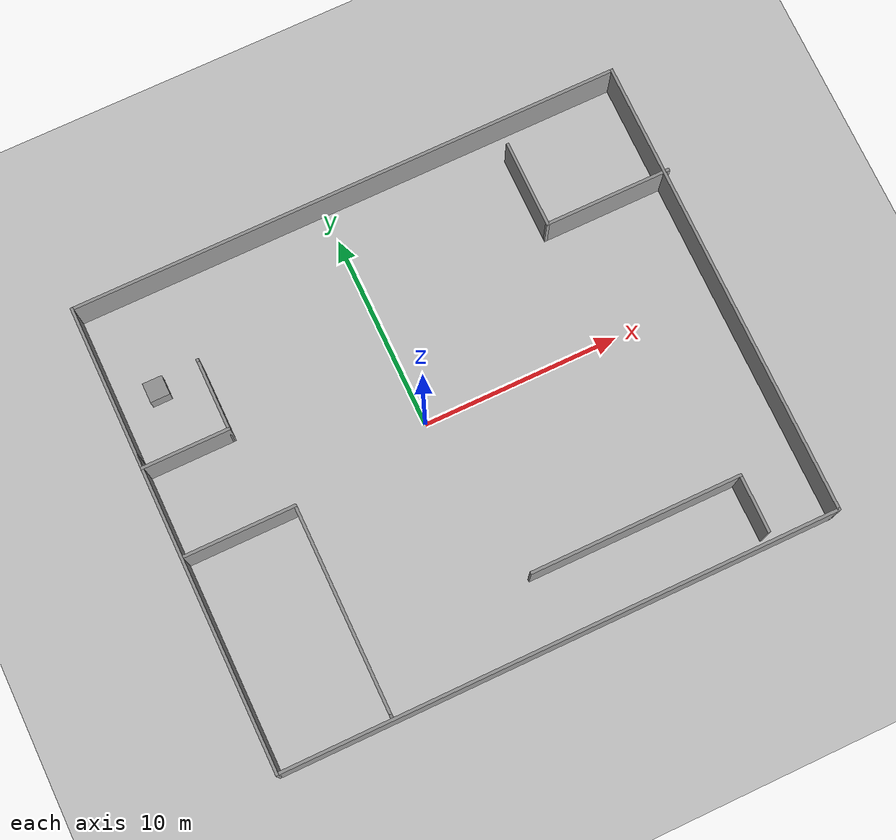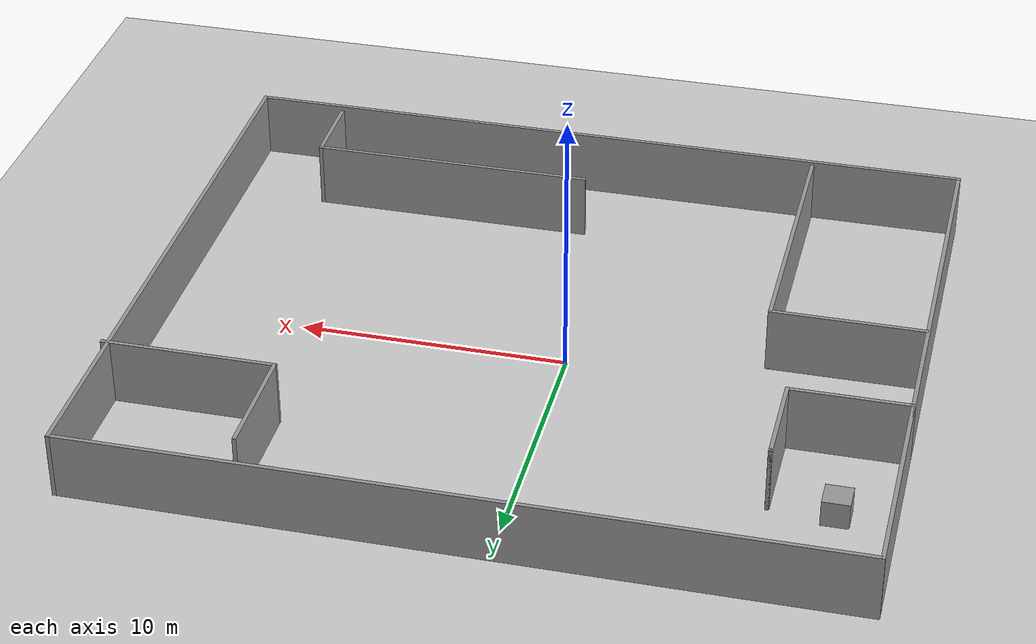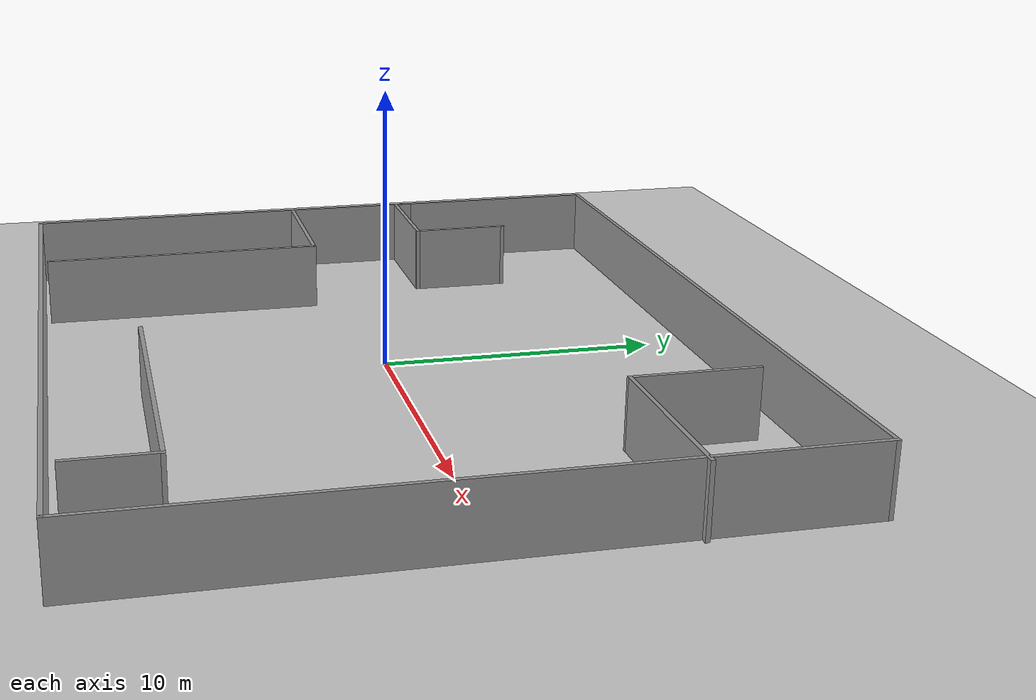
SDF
<sdf version="1.6">
 <world name="default">
  <light name="sun" type="directional">
   <pose>0 0 10 0 -0 0</pose>
   <diffuse>0.8 0.8 0.8 1</diffuse>
   <specular>0.2 0.2 0.2 1</specular>
   <attenuation>
    <range>1000</range>
    <constant>0.9</constant>
    <linear>0.01</linear>
    <quadratic>0.001</quadratic>
   </attenuation>
   <direction>-0.5 0.1 -0.9</direction>
  </light>
  <model name="ground_plane">
   <static>1</static>
   <link name="link">
    <collision name="collision">
     <geometry><plane><normal>0 0 1</normal><size>100 100</size></plane></geometry>
     <surface>
      <contact><collide_bitmask>65535</collide_bitmask></contact>
      <friction><ode><mu>100</mu><mu2>50</mu2></ode></friction>
     </surface>
    </collision>
    <visual name="visual">
     <cast_shadows>0</cast_shadows>
     <geometry><plane><normal>0 0 1</normal><size>100 100</size></plane></geometry>
     <material>
      <script><uri>file://media/materials/scripts/gazebo.material</uri><name>Gazebo/Grey</name></script>
     </material>
    </visual>
   </link>
  </model>
  <gravity>0 0 -9.8</gravity>
  <magnetic_field>6e-06 2.3e-05 -4.2e-05</magnetic_field>
  <atmosphere type="adiabatic"/>
  <physics name="default_physics" default="0" type="ode">
   <max_step_size>0.001</max_step_size>
   <real_time_factor>1</real_time_factor>
   <real_time_update_rate>1000</real_time_update_rate>
  </physics>
  <scene><ambient>0.4 0.4 0.4 1</ambient><background>0.7 0.7 0.7 1</background><shadows>1</shadows></scene>
  <audio><device>default</device></audio>
  <spherical_coordinates>
   <surface_model>EARTH_WGS84</surface_model>
   <latitude_deg>0</latitude_deg>
   <longitude_deg>0</longitude_deg>
   <elevation>0</elevation>
   <heading_deg>0</heading_deg>
  </spherical_coordinates>
  <model name="trytobe">
   <pose>1.29991 -0.28275 0 0 -0 0</pose>
   <link name="Wall_10">
    <collision name="Wall_10_Collision">
     <geometry><box><size>4.5 0.15 2.5</size></box></geometry>
     <pose>0 0 1.25 0 -0 0</pose>
    </collision>
    <visual name="Wall_10_Visual">
     <pose>0 0 1.25 0 -0 0</pose>
     <geometry><box><size>4.5 0.15 2.5</size></box></geometry>
     <material>
      <script><uri>file://media/materials/scripts/gazebo.material</uri><name>Gazebo/Grey</name></script>
      <ambient>1 1 1 1</ambient>
     </material>
     <meta><layer>0</layer></meta>
    </visual>
    <pose>-11.9764 3.45 0 0 -0 0</pose>
   </link>
   <link name="Wall_11">
    <collision name="Wall_11_Collision">
     <geometry><box><size>3.75 0.15 2.5</size></box></geometry>
     <pose>0 0 1.25 0 -0 0</pose>
    </collision>
    <visual name="Wall_11_Visual">
     <pose>0 0 1.25 0 -0 0</pose>
     <geometry><box><size>3.75 0.15 2.5</size></box></geometry>
     <material>
      <script><uri>file://media/materials/scripts/gazebo.material</uri><name>Gazebo/Grey</name></script>
      <ambient>1 1 1 1</ambient>
     </material>
     <meta><layer>0</layer></meta>
    </visual>
    <pose>-9.80141 5.25 0 0 -0 1.5708</pose>
   </link>
   <link name="Wall_12">
    <collision name="Wall_12_Collision">
     <geometry><box><size>0.15 0.15 2.5</size></box></geometry>
     <pose>0 0 1.25 0 -0 0</pose>
    </collision>
    <visual name="Wall_12_Visual">
     <pose>0 0 1.25 0 -0 0</pose>
     <geometry><box><size>0.15 0.15 2.5</size></box></geometry>
     <material>
      <script><uri>file://media/materials/scripts/gazebo.material</uri><name>Gazebo/Grey</name></script>
      <ambient>1 1 1 1</ambient>
     </material>
     <meta><layer>0</layer></meta>
    </visual>
    <pose>-9.80141 7.05 0 0 -0 0</pose>
   </link>
   <link name="Wall_14">
    <collision name="Wall_14_Collision">
     <geometry><box><size>5.75 0.15 2.5</size></box></geometry>
     <pose>0 0 1.25 0 -0 0</pose>
    </collision>
    <visual name="Wall_14_Visual">
     <pose>0 0 1.25 0 -0 0</pose>
     <geometry><box><size>5.75 0.15 2.5</size></box></geometry>
     <material>
      <script><uri>file://media/materials/scripts/gazebo.material</uri><name>Gazebo/Grey</name></script>
      <ambient>1 1 1 1</ambient>
     </material>
     <meta><layer>0</layer></meta>
    </visual>
    <pose>-11.2899 -1.11834 0 0 -0 0</pose>
   </link>
   <link name="Wall_15">
    <collision name="Wall_15_Collision">
     <geometry><box><size>10.5 0.15 2.5</size></box></geometry>
     <pose>0 0 1.25 0 -0 0</pose>
    </collision>
    <visual name="Wall_15_Visual">
     <pose>0 0 1.25 0 -0 0</pose>
     <geometry><box><size>10.5 0.15 2.5</size></box></geometry>
     <material>
      <script><uri>file://media/materials/scripts/gazebo.material</uri><name>Gazebo/Grey</name></script>
      <ambient>1 1 1 1</ambient>
     </material>
     <meta><layer>0</layer></meta>
    </visual>
    <pose>-8.48988 -6.29334 0 0 -0 -1.5708</pose>
   </link>
   <link name="Wall_17">
    <collision name="Wall_17_Collision">
     <geometry><box><size>3 0.15 2.5</size></box></geometry>
     <pose>0 0 1.25 0 -0 0</pose>
    </collision>
    <visual name="Wall_17_Visual">
     <pose>0 0 1.25 0 -0 0</pose>
     <geometry><box><size>3 0.15 2.5</size></box></geometry>
     <material>
      <script><uri>file://media/materials/scripts/gazebo.material</uri><name>Gazebo/Grey</name></script>
      <ambient>1 1 1 1</ambient>
     </material>
     <meta><layer>0</layer></meta>
    </visual>
    <pose>10.5828 -9.90697 0 0 -0 1.5708</pose>
   </link>
   <link name="Wall_18">
    <collision name="Wall_18_Collision">
     <geometry><box><size>10.75 0.15 2.5</size></box></geometry>
     <pose>0 0 1.25 0 -0 0</pose>
    </collision>
    <visual name="Wall_18_Visual">
     <pose>0 0 1.25 0 -0 0</pose>
     <geometry><box><size>10.75 0.15 2.5</size></box></geometry>
     <material>
      <script><uri>file://media/materials/scripts/gazebo.material</uri><name>Gazebo/Grey</name></script>
      <ambient>1 1 1 1</ambient>
     </material>
     <meta><layer>0</layer></meta>
    </visual>
    <pose>5.2828 -8.48197 0 0 -0 3.14159</pose>
   </link>
   <link name="Wall_20">
    <collision name="Wall_20_Collision">
     <geometry><box><size>6.5 0.15 2.5</size></box></geometry>
     <pose>0 0 1.25 0 -0 0</pose>
    </collision>
    <visual name="Wall_20_Visual">
     <pose>0 0 1.25 0 -0 0</pose>
     <geometry><box><size>6.5 0.15 2.5</size></box></geometry>
     <material>
      <script><uri>file://media/materials/scripts/gazebo.material</uri><name>Gazebo/Grey</name></script>
      <ambient>1 1 1 1</ambient>
     </material>
     <meta><layer>0</layer></meta>
    </visual>
    <pose>10.9764 6.14195 0 0 -0 3.14159</pose>
   </link>
   <link name="Wall_21">
    <collision name="Wall_21_Collision">
     <geometry><box><size>4.5 0.15 2.5</size></box></geometry>
     <pose>0 0 1.25 0 -0 0</pose>
    </collision>
    <visual name="Wall_21_Visual">
     <pose>0 0 1.25 0 -0 0</pose>
     <geometry><box><size>4.5 0.15 2.5</size></box></geometry>
     <material>
      <script><uri>file://media/materials/scripts/gazebo.material</uri><name>Gazebo/Grey</name></script>
      <ambient>1 1 1 1</ambient>
     </material>
     <meta><layer>0</layer></meta>
    </visual>
    <pose>7.80141 8.31695 0 0 -0 1.5708</pose>
   </link>
   <link name="Wall_5">
    <collision name="Wall_5_Collision">
     <geometry><box><size>16 0.15 2.5</size></box></geometry>
     <pose>0 0 1.25 0 -0 0</pose>
    </collision>
    <visual name="Wall_5_Visual">
     <pose>0 0 1.25 0 -0 0</pose>
     <geometry><box><size>16 0.15 2.5</size></box></geometry>
     <material>
      <script><uri>file://media/materials/scripts/gazebo.material</uri><name>Gazebo/Grey</name></script>
      <ambient>1 1 1 1</ambient>
     </material>
     <meta><layer>0</layer></meta>
    </visual>
    <pose>-14.1514 -3.875 0 0 -0 -1.5708</pose>
   </link>
   <link name="Wall_6">
    <collision name="Wall_6_Collision">
     <geometry><box><size>28.25 0.15 2.5</size></box></geometry>
     <pose>0 0 1.25 0 -0 0</pose>
    </collision>
    <visual name="Wall_6_Visual">
     <pose>0 0 1.25 0 -0 0</pose>
     <geometry><box><size>28.25 0.15 2.5</size></box></geometry>
     <material>
      <script><uri>file://media/materials/scripts/gazebo.material</uri><name>Gazebo/Grey</name></script>
      <ambient>1 1 1 1</ambient>
     </material>
     <meta><layer>0</layer></meta>
    </visual>
    <pose>-0.101411 -11.8 0 0 -0 0</pose>
   </link>
   <link name="Wall_7">
    <collision name="Wall_7_Collision">
     <geometry><box><size>23.75 0.15 2.5</size></box></geometry>
     <pose>0 0 1.25 0 -0 0</pose>
    </collision>
    <visual name="Wall_7_Visual">
     <pose>0 0 1.25 0 -0 0</pose>
     <geometry><box><size>23.75 0.15 2.5</size></box></geometry>
     <material>
      <script><uri>file://media/materials/scripts/gazebo.material</uri><name>Gazebo/Grey</name></script>
      <ambient>1 1 1 1</ambient>
     </material>
     <meta><layer>0</layer></meta>
    </visual>
    <pose>13.9486 0 0 0 -0 1.5708</pose>
   </link>
   <link name="Wall_8">
    <collision name="Wall_8_Collision">
     <geometry><box><size>28.25 0.15 2.5</size></box></geometry>
     <pose>0 0 1.25 0 -0 0</pose>
    </collision>
    <visual name="Wall_8_Visual">
     <pose>0 0 1.25 0 -0 0</pose>
     <geometry><box><size>28.25 0.15 2.5</size></box></geometry>
     <material>
      <script><uri>file://media/materials/scripts/gazebo.material</uri><name>Gazebo/Grey</name></script>
      <ambient>1 1 1 1</ambient>
     </material>
     <meta><layer>0</layer></meta>
    </visual>
    <pose>-0.101411 11.8 0 0 -0 3.14159</pose>
   </link>
   <link name="Wall_9">
    <collision name="Wall_9_Collision">
     <geometry><box><size>8.5 0.15 2.5</size></box></geometry>
     <pose>0 0 1.25 0 -0 0</pose>
    </collision>
    <visual name="Wall_9_Visual">
     <pose>0 0 1.25 0 -0 0</pose>
     <geometry><box><size>8.5 0.15 2.5</size></box></geometry>
     <material>
      <script><uri>file://media/materials/scripts/gazebo.material</uri><name>Gazebo/Grey</name></script>
      <ambient>1 1 1 1</ambient>
     </material>
     <meta><layer>0</layer></meta>
    </visual>
    <pose>-14.1514 7.625 0 0 -0 -1.5708</pose>
   </link>
   <static>1</static>
  </model>
  <model name="unit_box">
   <pose>-10.8538 6.74237 0.5 0 -0 0</pose>
   <link name="link">
    <inertial>
     <mass>1</mass>
     <inertia>
      <ixx>0.166667</ixx>
      <ixy>0</ixy>
      <ixz>0</ixz>
      <iyy>0.166667</iyy>
      <iyz>0</iyz>
      <izz>0.166667</izz>
     </inertia>
    </inertial>
    <collision name="collision"><geometry><box><size>1 1 1</size></box></geometry></collision>
    <visual name="visual">
     <geometry><box><size>1 1 1</size></box></geometry>
     <material>
      <script><name>Gazebo/Grey</name><uri>file://media/materials/scripts/gazebo.material</uri></script>
     </material>
    </visual>
   </link>
  </model>
 </world>
</sdf>
